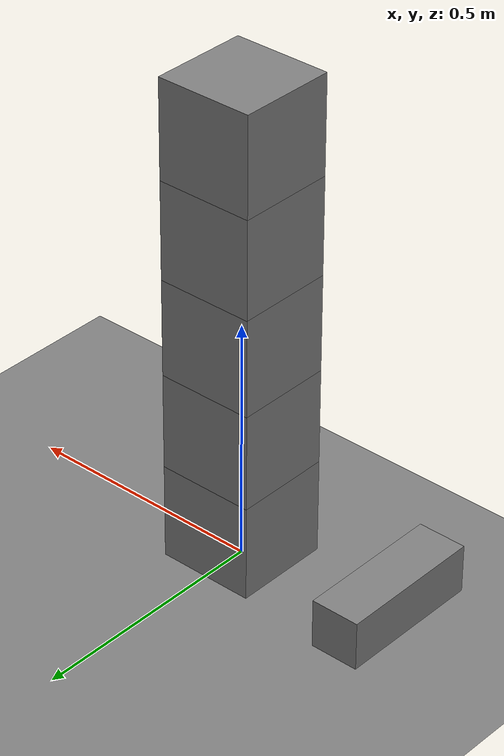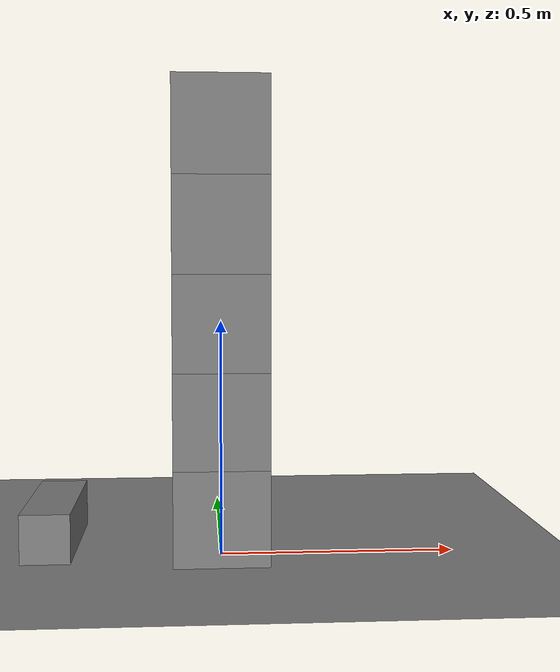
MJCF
<mujoco model="stack_fixture">
  <option timestep="0.002"/>
  <worldbody>
    <geom name="floor" type="plane" size="6 6 0.1" friction="1.0 0.005 0.0001"/>
    <body name="block1" pos="0 0 0.100">
      <freejoint/>
      <geom name="block1" type="box" size="0.1 0.1 0.1" mass="0.5" friction="0.1 0.005 0.0001"/>
    </body>
    <body name="block2" pos="0 0 0.300">
      <freejoint/>
      <geom name="block2" type="box" size="0.1 0.1 0.1" mass="0.5" friction="0.1 0.005 0.0001"/>
    </body>
    <body name="block3" pos="0 0 0.500">
      <freejoint/>
      <geom name="block3" type="box" size="0.1 0.1 0.1" mass="0.5" friction="0.1 0.005 0.0001"/>
    </body>
    <body name="block4" pos="0 0 0.700">
      <freejoint/>
      <geom name="block4" type="box" size="0.1 0.1 0.1" mass="0.5" friction="0.1 0.005 0.0001"/>
    </body>
    <body name="block5" pos="0 0 0.900">
      <freejoint/>
      <geom name="block5" type="box" size="0.1 0.1 0.1" mass="0.5" friction="0.1 0.005 0.0001"/>
    </body>
    <body name="pusher" pos="-0.35 0 0.08">
      <joint name="ram_slide" type="slide" axis="1 0 0" limited="true" range="0 0.33"/>
      <geom name="pusher" type="box" size="0.05 0.15 0.05" mass="20.0" friction="0.1 0.005 0.0001"/>
    </body>
  </worldbody>
  <keyframe>
    <key name="start" qpos="0 0 0.100 1 0 0 0  0 0 0.300 1 0 0 0  0 0 0.500 1 0 0 0  0 0 0.700 1 0 0 0  0 0 0.900 1 0 0 0  0" qvel="0 0 0 0 0 0  0 0 0 0 0 0  0 0 0 0 0 0  0 0 0 0 0 0  0 0 0 0 0 0  1.0"/>
  </keyframe>
</mujoco>
